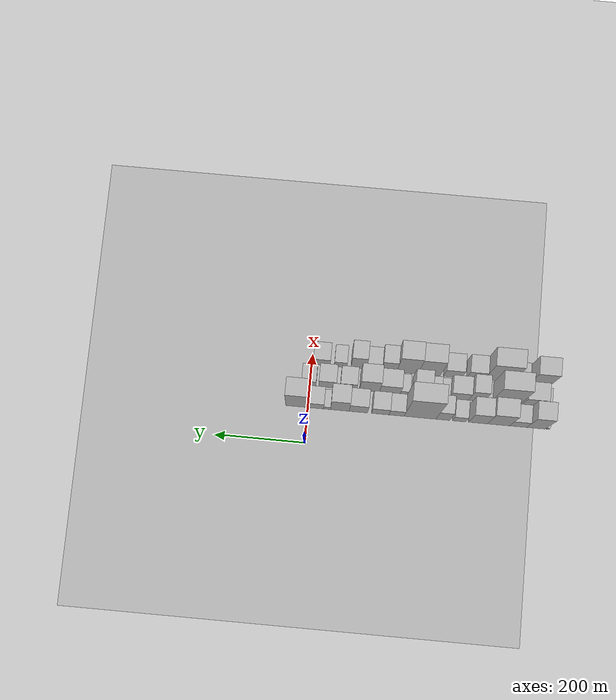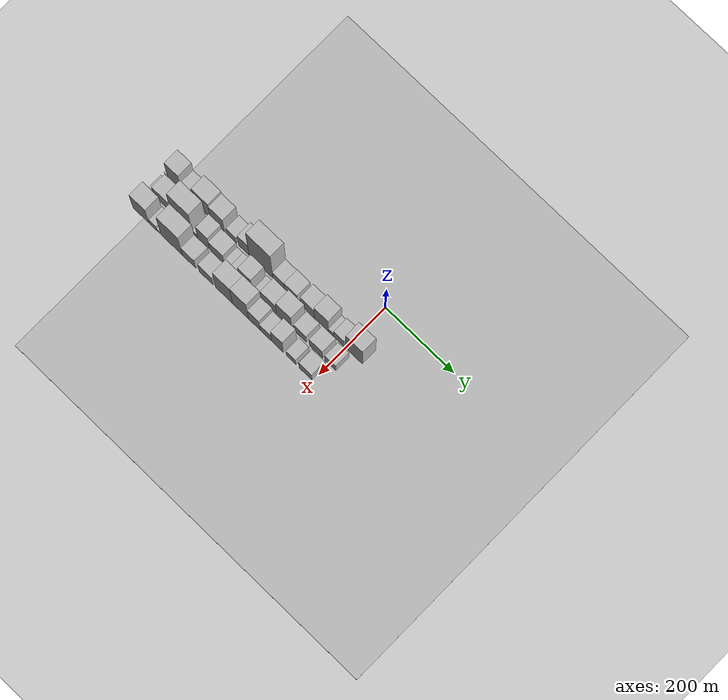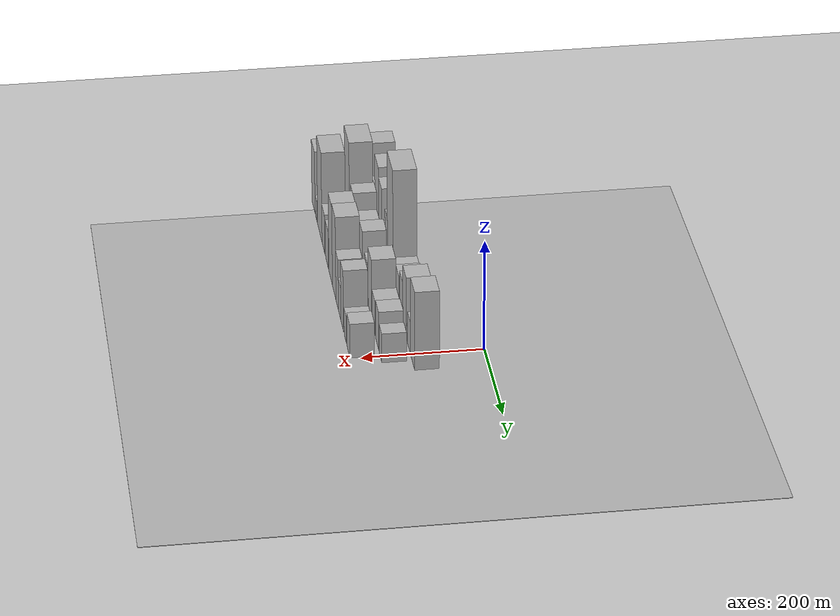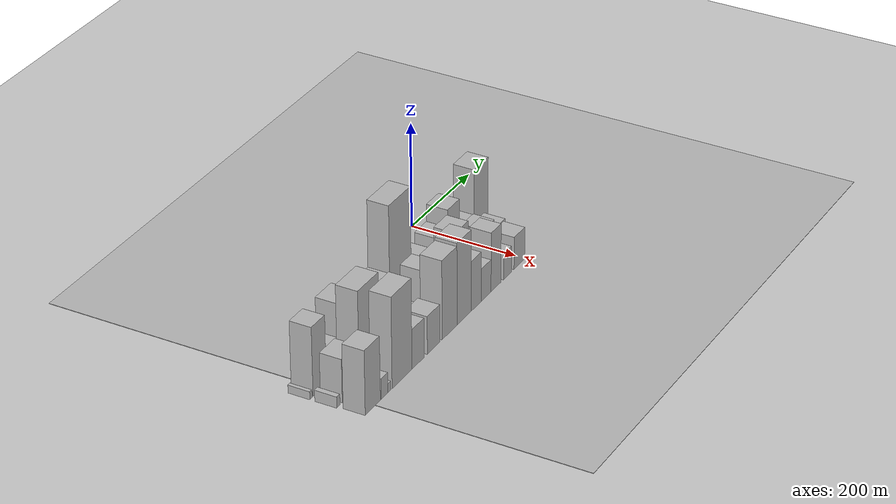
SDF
<sdf version="1.6">
 <world name="default">
  <include><name>ground_plane_1</name><uri>model://HANNAS_ground_plane</uri></include>
  <include>
   <name>ground_plane_2</name>
   <uri>model://HANNAS_ground_plane</uri>
   <pose>100 0 0  0 0 0</pose>
  </include>
  <model name="building_1">
   <static>1</static>
   <pose>100.0000 -532.6569 0 0.000000 0.000000 0.000000</pose>
   <link name="link">
    <pose>0 0 7.50 0 0 0</pose>
    <collision name="collision"><geometry><box><size>40.0000 6.6862 15.0000</size></box></geometry></collision>
    <visual name="visual">
     <cast_shadows>0</cast_shadows>
     <geometry><box><size>40.0000 6.6862 15.0000</size></box></geometry>
     <material>
      <script>
       <uri>model://HANNAS_wall/materials/scripts</uri>
       <uri>model://HANNAS_wall/materials/textures</uri>
       <name>vrc/HANNAS_wall</name>
      </script>
     </material>
    </visual>
   </link>
  </model>
  <model name="building_2">
   <static>1</static>
   <pose>100.0000 -505.9349 0 0.000000 0.000000 0.000000</pose>
   <link name="link">
    <pose>0 0 64.50 0 0 0</pose>
    <collision name="collision"><geometry><box><size>40.0000 40.7578 129.0000</size></box></geometry></collision>
    <visual name="visual">
     <cast_shadows>0</cast_shadows>
     <geometry><box><size>40.0000 40.7578 129.0000</size></box></geometry>
     <material>
      <script>
       <uri>model://HANNAS_wall/materials/scripts</uri>
       <uri>model://HANNAS_wall/materials/textures</uri>
       <name>vrc/HANNAS_wall</name>
      </script>
     </material>
    </visual>
   </link>
  </model>
  <model name="building_3">
   <static>1</static>
   <pose>100.0000 -466.7284 0 0.000000 0.000000 0.000000</pose>
   <link name="link">
    <pose>0 0 33.00 0 0 0</pose>
    <collision name="collision"><geometry><box><size>40.0000 37.6552 66.0000</size></box></geometry></collision>
    <visual name="visual">
     <cast_shadows>0</cast_shadows>
     <geometry><box><size>40.0000 37.6552 66.0000</size></box></geometry>
     <material>
      <script>
       <uri>model://HANNAS_wall/materials/scripts</uri>
       <uri>model://HANNAS_wall/materials/textures</uri>
       <name>vrc/HANNAS_wall</name>
      </script>
     </material>
    </visual>
   </link>
  </model>
  <model name="building_4">
   <static>1</static>
   <pose>100.0000 -423.2139 0 0.000000 0.000000 0.000000</pose>
   <link name="link">
    <pose>0 0 64.50 0 0 0</pose>
    <collision name="collision"><geometry><box><size>40.0000 49.3737 129.0000</size></box></geometry></collision>
    <visual name="visual">
     <cast_shadows>0</cast_shadows>
     <geometry><box><size>40.0000 49.3737 129.0000</size></box></geometry>
     <material>
      <script>
       <uri>model://HANNAS_wall/materials/scripts</uri>
       <uri>model://HANNAS_wall/materials/textures</uri>
       <name>vrc/HANNAS_wall</name>
      </script>
     </material>
    </visual>
   </link>
  </model>
  <model name="building_5">
   <static>1</static>
   <pose>100.0000 -377.5624 0 0.000000 0.000000 0.000000</pose>
   <link name="link">
    <pose>0 0 55.50 0 0 0</pose>
    <collision name="collision"><geometry><box><size>40.0000 41.9293 111.0000</size></box></geometry></collision>
    <visual name="visual">
     <cast_shadows>0</cast_shadows>
     <geometry><box><size>40.0000 41.9293 111.0000</size></box></geometry>
     <material>
      <script>
       <uri>model://HANNAS_wall/materials/scripts</uri>
       <uri>model://HANNAS_wall/materials/textures</uri>
       <name>vrc/HANNAS_wall</name>
      </script>
     </material>
    </visual>
   </link>
  </model>
  <model name="building_6">
   <static>1</static>
   <pose>100.0000 -335.8281 0 0.000000 0.000000 0.000000</pose>
   <link name="link">
    <pose>0 0 27.00 0 0 0</pose>
    <collision name="collision"><geometry><box><size>40.0000 29.5394 54.0000</size></box></geometry></collision>
    <visual name="visual">
     <cast_shadows>0</cast_shadows>
     <geometry><box><size>40.0000 29.5394 54.0000</size></box></geometry>
     <material>
      <script>
       <uri>model://HANNAS_wall/materials/scripts</uri>
       <uri>model://HANNAS_wall/materials/textures</uri>
       <name>vrc/HANNAS_wall</name>
      </script>
     </material>
    </visual>
   </link>
  </model>
  <model name="building_7">
   <static>1</static>
   <pose>100.0000 -299.5484 0 0.000000 0.000000 0.000000</pose>
   <link name="link">
    <pose>0 0 48.00 0 0 0</pose>
    <collision name="collision"><geometry><box><size>40.0000 31.0200 96.0000</size></box></geometry></collision>
    <visual name="visual">
     <cast_shadows>0</cast_shadows>
     <geometry><box><size>40.0000 31.0200 96.0000</size></box></geometry>
     <material>
      <script>
       <uri>model://HANNAS_wall/materials/scripts</uri>
       <uri>model://HANNAS_wall/materials/textures</uri>
       <name>vrc/HANNAS_wall</name>
      </script>
     </material>
    </visual>
   </link>
  </model>
  <model name="building_8">
   <static>1</static>
   <pose>100.0000 -248.7638 0 0.000000 0.000000 0.000000</pose>
   <link name="link">
    <pose>0 0 111.00 0 0 0</pose>
    <collision name="collision"><geometry><box><size>40.0000 70.5492 222.0000</size></box></geometry></collision>
    <visual name="visual">
     <cast_shadows>0</cast_shadows>
     <geometry><box><size>40.0000 70.5492 222.0000</size></box></geometry>
     <material>
      <script>
       <uri>model://HANNAS_wall/materials/scripts</uri>
       <uri>model://HANNAS_wall/materials/textures</uri>
       <name>vrc/HANNAS_wall</name>
      </script>
     </material>
    </visual>
   </link>
  </model>
  <model name="building_9">
   <static>1</static>
   <pose>100.0000 -196.5476 0 0.000000 0.000000 0.000000</pose>
   <link name="link">
    <pose>0 0 30.00 0 0 0</pose>
    <collision name="collision"><geometry><box><size>40.0000 33.8831 60.0000</size></box></geometry></collision>
    <visual name="visual">
     <cast_shadows>0</cast_shadows>
     <geometry><box><size>40.0000 33.8831 60.0000</size></box></geometry>
     <material>
      <script>
       <uri>model://HANNAS_wall/materials/scripts</uri>
       <uri>model://HANNAS_wall/materials/textures</uri>
       <name>vrc/HANNAS_wall</name>
      </script>
     </material>
    </visual>
   </link>
  </model>
  <model name="building_10">
   <static>1</static>
   <pose>100.0000 -160.3674 0 0.000000 0.000000 0.000000</pose>
   <link name="link">
    <pose>0 0 33.00 0 0 0</pose>
    <collision name="collision"><geometry><box><size>40.0000 38.4773 66.0000</size></box></geometry></collision>
    <visual name="visual">
     <cast_shadows>0</cast_shadows>
     <geometry><box><size>40.0000 38.4773 66.0000</size></box></geometry>
     <material>
      <script>
       <uri>model://HANNAS_wall/materials/scripts</uri>
       <uri>model://HANNAS_wall/materials/textures</uri>
       <name>vrc/HANNAS_wall</name>
      </script>
     </material>
    </visual>
   </link>
  </model>
  <model name="building_11">
   <static>1</static>
   <pose>100.0000 -111.7872 0 0.000000 0.000000 0.000000</pose>
   <link name="link">
    <pose>0 0 40.50 0 0 0</pose>
    <collision name="collision"><geometry><box><size>40.0000 40.6831 81.0000</size></box></geometry></collision>
    <visual name="visual">
     <cast_shadows>0</cast_shadows>
     <geometry><box><size>40.0000 40.6831 81.0000</size></box></geometry>
     <material>
      <script>
       <uri>model://HANNAS_wall/materials/scripts</uri>
       <uri>model://HANNAS_wall/materials/textures</uri>
       <name>vrc/HANNAS_wall</name>
      </script>
     </material>
    </visual>
   </link>
  </model>
  <model name="building_12">
   <static>1</static>
   <pose>100.0000 -70.7702 0 0.000000 0.000000 0.000000</pose>
   <link name="link">
    <pose>0 0 57.00 0 0 0</pose>
    <collision name="collision"><geometry><box><size>40.0000 41.3510 114.0000</size></box></geometry></collision>
    <visual name="visual">
     <cast_shadows>0</cast_shadows>
     <geometry><box><size>40.0000 41.3510 114.0000</size></box></geometry>
     <material>
      <script>
       <uri>model://HANNAS_wall/materials/scripts</uri>
       <uri>model://HANNAS_wall/materials/textures</uri>
       <name>vrc/HANNAS_wall</name>
      </script>
     </material>
    </visual>
   </link>
  </model>
  <model name="building_13">
   <static>1</static>
   <pose>100.0000 -42.5535 0 0.000000 0.000000 0.000000</pose>
   <link name="link">
    <pose>0 0 15.00 0 0 0</pose>
    <collision name="collision"><geometry><box><size>40.0000 15.0822 30.0000</size></box></geometry></collision>
    <visual name="visual">
     <cast_shadows>0</cast_shadows>
     <geometry><box><size>40.0000 15.0822 30.0000</size></box></geometry>
     <material>
      <script>
       <uri>model://HANNAS_wall/materials/scripts</uri>
       <uri>model://HANNAS_wall/materials/textures</uri>
       <name>vrc/HANNAS_wall</name>
      </script>
     </material>
    </visual>
   </link>
  </model>
  <model name="building_14">
   <static>1</static>
   <pose>100.0000 -19.4573 0 0.000000 0.000000 0.000000</pose>
   <link name="link">
    <pose>0 0 30.00 0 0 0</pose>
    <collision name="collision"><geometry><box><size>40.0000 31.1103 60.0000</size></box></geometry></collision>
    <visual name="visual">
     <cast_shadows>0</cast_shadows>
     <geometry><box><size>40.0000 31.1103 60.0000</size></box></geometry>
     <material>
      <script>
       <uri>model://HANNAS_wall/materials/scripts</uri>
       <uri>model://HANNAS_wall/materials/textures</uri>
       <name>vrc/HANNAS_wall</name>
      </script>
     </material>
    </visual>
   </link>
  </model>
  <model name="building_15">
   <static>1</static>
   <pose>100.0000 24.7124 0 0.000000 0.000000 0.000000</pose>
   <link name="link">
    <pose>0 0 72.00 0 0 0</pose>
    <collision name="collision"><geometry><box><size>40.0000 49.2291 144.0000</size></box></geometry></collision>
    <visual name="visual">
     <cast_shadows>0</cast_shadows>
     <geometry><box><size>40.0000 49.2291 144.0000</size></box></geometry>
     <material>
      <script>
       <uri>model://HANNAS_wall/materials/scripts</uri>
       <uri>model://HANNAS_wall/materials/textures</uri>
       <name>vrc/HANNAS_wall</name>
      </script>
     </material>
    </visual>
   </link>
  </model>
  <model name="building_32">
   <static>1</static>
   <pose>149.0000 -531.0067 0 0.000000 0.000000 0.000000</pose>
   <link name="link">
    <pose>0 0 10.50 0 0 0</pose>
    <collision name="collision"><geometry><box><size>40.0000 9.9865 21.0000</size></box></geometry></collision>
    <visual name="visual">
     <cast_shadows>0</cast_shadows>
     <geometry><box><size>40.0000 9.9865 21.0000</size></box></geometry>
     <material>
      <script>
       <uri>model://HANNAS_wall/materials/scripts</uri>
       <uri>model://HANNAS_wall/materials/textures</uri>
       <name>vrc/HANNAS_wall</name>
      </script>
     </material>
    </visual>
   </link>
  </model>
  <model name="building_33">
   <static>1</static>
   <pose>149.0000 -495.3012 0 0.000000 0.000000 0.000000</pose>
   <link name="link">
    <pose>0 0 40.50 0 0 0</pose>
    <collision name="collision"><geometry><box><size>40.0000 47.4246 81.0000</size></box></geometry></collision>
    <visual name="visual">
     <cast_shadows>0</cast_shadows>
     <geometry><box><size>40.0000 47.4246 81.0000</size></box></geometry>
     <material>
      <script>
       <uri>model://HANNAS_wall/materials/scripts</uri>
       <uri>model://HANNAS_wall/materials/textures</uri>
       <name>vrc/HANNAS_wall</name>
      </script>
     </material>
    </visual>
   </link>
  </model>
  <model name="building_34">
   <static>1</static>
   <pose>149.0000 -434.6481 0 0.000000 0.000000 0.000000</pose>
   <link name="link">
    <pose>0 0 88.50 0 0 0</pose>
    <collision name="collision"><geometry><box><size>40.0000 63.8814 177.0000</size></box></geometry></collision>
    <visual name="visual">
     <cast_shadows>0</cast_shadows>
     <geometry><box><size>40.0000 63.8814 177.0000</size></box></geometry>
     <material>
      <script>
       <uri>model://HANNAS_wall/materials/scripts</uri>
       <uri>model://HANNAS_wall/materials/textures</uri>
       <name>vrc/HANNAS_wall</name>
      </script>
     </material>
    </visual>
   </link>
  </model>
  <model name="building_35">
   <static>1</static>
   <pose>149.0000 -395.0903 0 0.000000 0.000000 0.000000</pose>
   <link name="link">
    <pose>0 0 15.00 0 0 0</pose>
    <collision name="collision"><geometry><box><size>40.0000 15.2344 30.0000</size></box></geometry></collision>
    <visual name="visual">
     <cast_shadows>0</cast_shadows>
     <geometry><box><size>40.0000 15.2344 30.0000</size></box></geometry>
     <material>
      <script>
       <uri>model://HANNAS_wall/materials/scripts</uri>
       <uri>model://HANNAS_wall/materials/textures</uri>
       <name>vrc/HANNAS_wall</name>
      </script>
     </material>
    </visual>
   </link>
  </model>
  <model name="building_36">
   <static>1</static>
   <pose>149.0000 -370.2064 0 0.000000 0.000000 0.000000</pose>
   <link name="link">
    <pose>0 0 54.00 0 0 0</pose>
    <collision name="collision"><geometry><box><size>40.0000 34.5334 108.0000</size></box></geometry></collision>
    <visual name="visual">
     <cast_shadows>0</cast_shadows>
     <geometry><box><size>40.0000 34.5334 108.0000</size></box></geometry>
     <material>
      <script>
       <uri>model://HANNAS_wall/materials/scripts</uri>
       <uri>model://HANNAS_wall/materials/textures</uri>
       <name>vrc/HANNAS_wall</name>
      </script>
     </material>
    </visual>
   </link>
  </model>
  <model name="building_37">
   <static>1</static>
   <pose>149.0000 -331.3263 0 0.000000 0.000000 0.000000</pose>
   <link name="link">
    <pose>0 0 37.50 0 0 0</pose>
    <collision name="collision"><geometry><box><size>40.0000 43.2267 75.0000</size></box></geometry></collision>
    <visual name="visual">
     <cast_shadows>0</cast_shadows>
     <geometry><box><size>40.0000 43.2267 75.0000</size></box></geometry>
     <material>
      <script>
       <uri>model://HANNAS_wall/materials/scripts</uri>
       <uri>model://HANNAS_wall/materials/textures</uri>
       <name>vrc/HANNAS_wall</name>
      </script>
     </material>
    </visual>
   </link>
  </model>
  <model name="building_38">
   <static>1</static>
   <pose>149.0000 -299.9384 0 0.000000 0.000000 0.000000</pose>
   <link name="link">
    <pose>0 0 16.50 0 0 0</pose>
    <collision name="collision"><geometry><box><size>40.0000 19.5491 33.0000</size></box></geometry></collision>
    <visual name="visual">
     <cast_shadows>0</cast_shadows>
     <geometry><box><size>40.0000 19.5491 33.0000</size></box></geometry>
     <material>
      <script>
       <uri>model://HANNAS_wall/materials/scripts</uri>
       <uri>model://HANNAS_wall/materials/textures</uri>
       <name>vrc/HANNAS_wall</name>
      </script>
     </material>
    </visual>
   </link>
  </model>
  <model name="building_39">
   <static>1</static>
   <pose>149.0000 -277.6687 0 0.000000 0.000000 0.000000</pose>
   <link name="link">
    <pose>0 0 21.00 0 0 0</pose>
    <collision name="collision"><geometry><box><size>40.0000 24.9903 42.0000</size></box></geometry></collision>
    <visual name="visual">
     <cast_shadows>0</cast_shadows>
     <geometry><box><size>40.0000 24.9903 42.0000</size></box></geometry>
     <material>
      <script>
       <uri>model://HANNAS_wall/materials/scripts</uri>
       <uri>model://HANNAS_wall/materials/textures</uri>
       <name>vrc/HANNAS_wall</name>
      </script>
     </material>
    </visual>
   </link>
  </model>
  <model name="building_40">
   <static>1</static>
   <pose>149.0000 -245.9102 0 0.000000 0.000000 0.000000</pose>
   <link name="link">
    <pose>0 0 52.50 0 0 0</pose>
    <collision name="collision"><geometry><box><size>40.0000 38.5267 105.0000</size></box></geometry></collision>
    <visual name="visual">
     <cast_shadows>0</cast_shadows>
     <geometry><box><size>40.0000 38.5267 105.0000</size></box></geometry>
     <material>
      <script>
       <uri>model://HANNAS_wall/materials/scripts</uri>
       <uri>model://HANNAS_wall/materials/textures</uri>
       <name>vrc/HANNAS_wall</name>
      </script>
     </material>
    </visual>
   </link>
  </model>
  <model name="building_41">
   <static>1</static>
   <pose>149.0000 -211.1616 0 0.000000 0.000000 0.000000</pose>
   <link name="link">
    <pose>0 0 18.00 0 0 0</pose>
    <collision name="collision"><geometry><box><size>40.0000 20.9706 36.0000</size></box></geometry></collision>
    <visual name="visual">
     <cast_shadows>0</cast_shadows>
     <geometry><box><size>40.0000 20.9706 36.0000</size></box></geometry>
     <material>
      <script>
       <uri>model://HANNAS_wall/materials/scripts</uri>
       <uri>model://HANNAS_wall/materials/textures</uri>
       <name>vrc/HANNAS_wall</name>
      </script>
     </material>
    </visual>
   </link>
  </model>
  <model name="building_42">
   <static>1</static>
   <pose>149.0000 -177.5878 0 0.000000 0.000000 0.000000</pose>
   <link name="link">
    <pose>0 0 40.50 0 0 0</pose>
    <collision name="collision"><geometry><box><size>40.0000 46.1771 81.0000</size></box></geometry></collision>
    <visual name="visual">
     <cast_shadows>0</cast_shadows>
     <geometry><box><size>40.0000 46.1771 81.0000</size></box></geometry>
     <material>
      <script>
       <uri>model://HANNAS_wall/materials/scripts</uri>
       <uri>model://HANNAS_wall/materials/textures</uri>
       <name>vrc/HANNAS_wall</name>
      </script>
     </material>
    </visual>
   </link>
  </model>
  <model name="building_43">
   <static>1</static>
   <pose>149.0000 -132.2353 0 0.000000 0.000000 0.000000</pose>
   <link name="link">
    <pose>0 0 58.50 0 0 0</pose>
    <collision name="collision"><geometry><box><size>40.0000 44.5278 117.0000</size></box></geometry></collision>
    <visual name="visual">
     <cast_shadows>0</cast_shadows>
     <geometry><box><size>40.0000 44.5278 117.0000</size></box></geometry>
     <material>
      <script>
       <uri>model://HANNAS_wall/materials/scripts</uri>
       <uri>model://HANNAS_wall/materials/textures</uri>
       <name>vrc/HANNAS_wall</name>
      </script>
     </material>
    </visual>
   </link>
  </model>
  <model name="building_44">
   <static>1</static>
   <pose>149.0000 -85.3971 0 0.000000 0.000000 0.000000</pose>
   <link name="link">
    <pose>0 0 33.00 0 0 0</pose>
    <collision name="collision"><geometry><box><size>40.0000 37.1487 66.0000</size></box></geometry></collision>
    <visual name="visual">
     <cast_shadows>0</cast_shadows>
     <geometry><box><size>40.0000 37.1487 66.0000</size></box></geometry>
     <material>
      <script>
       <uri>model://HANNAS_wall/materials/scripts</uri>
       <uri>model://HANNAS_wall/materials/textures</uri>
       <name>vrc/HANNAS_wall</name>
      </script>
     </material>
    </visual>
   </link>
  </model>
  <model name="building_45">
   <static>1</static>
   <pose>149.0000 -38.5079 0 0.000000 0.000000 0.000000</pose>
   <link name="link">
    <pose>0 0 36.00 0 0 0</pose>
    <collision name="collision"><geometry><box><size>40.0000 38.6296 72.0000</size></box></geometry></collision>
    <visual name="visual">
     <cast_shadows>0</cast_shadows>
     <geometry><box><size>40.0000 38.6296 72.0000</size></box></geometry>
     <material>
      <script>
       <uri>model://HANNAS_wall/materials/scripts</uri>
       <uri>model://HANNAS_wall/materials/textures</uri>
       <name>vrc/HANNAS_wall</name>
      </script>
     </material>
    </visual>
   </link>
  </model>
  <model name="building_46">
   <static>1</static>
   <pose>149.0000 2.9643 0 0.000000 0.000000 0.000000</pose>
   <link name="link">
    <pose>0 0 27.00 0 0 0</pose>
    <collision name="collision"><geometry><box><size>40.0000 32.3148 54.0000</size></box></geometry></collision>
    <visual name="visual">
     <cast_shadows>0</cast_shadows>
     <geometry><box><size>40.0000 32.3148 54.0000</size></box></geometry>
     <material>
      <script>
       <uri>model://HANNAS_wall/materials/scripts</uri>
       <uri>model://HANNAS_wall/materials/textures</uri>
       <name>vrc/HANNAS_wall</name>
      </script>
     </material>
    </visual>
   </link>
  </model>
  <model name="building_60">
   <static>1</static>
   <pose>198.0000 -508.4930 0 0.000000 0.000000 0.000000</pose>
   <link name="link">
    <pose>0 0 60.00 0 0 0</pose>
    <collision name="collision"><geometry><box><size>40.0000 47.0139 120.0000</size></box></geometry></collision>
    <visual name="visual">
     <cast_shadows>0</cast_shadows>
     <geometry><box><size>40.0000 47.0139 120.0000</size></box></geometry>
     <material>
      <script>
       <uri>model://HANNAS_wall/materials/scripts</uri>
       <uri>model://HANNAS_wall/materials/textures</uri>
       <name>vrc/HANNAS_wall</name>
      </script>
     </material>
    </visual>
   </link>
  </model>
  <model name="building_61">
   <static>1</static>
   <pose>198.0000 -471.4703 0 0.000000 0.000000 0.000000</pose>
   <link name="link">
    <pose>0 0 19.50 0 0 0</pose>
    <collision name="collision"><geometry><box><size>40.0000 21.0315 39.0000</size></box></geometry></collision>
    <visual name="visual">
     <cast_shadows>0</cast_shadows>
     <geometry><box><size>40.0000 21.0315 39.0000</size></box></geometry>
     <material>
      <script>
       <uri>model://HANNAS_wall/materials/scripts</uri>
       <uri>model://HANNAS_wall/materials/textures</uri>
       <name>vrc/HANNAS_wall</name>
      </script>
     </material>
    </visual>
   </link>
  </model>
  <model name="building_62">
   <static>1</static>
   <pose>198.0000 -456.5222 0 0.000000 0.000000 0.000000</pose>
   <link name="link">
    <pose>0 0 9.00 0 0 0</pose>
    <collision name="collision"><geometry><box><size>40.0000 8.8648 18.0000</size></box></geometry></collision>
    <visual name="visual">
     <cast_shadows>0</cast_shadows>
     <geometry><box><size>40.0000 8.8648 18.0000</size></box></geometry>
     <material>
      <script>
       <uri>model://HANNAS_wall/materials/scripts</uri>
       <uri>model://HANNAS_wall/materials/textures</uri>
       <name>vrc/HANNAS_wall</name>
      </script>
     </material>
    </visual>
   </link>
  </model>
  <model name="building_63">
   <static>1</static>
   <pose>198.0000 -416.4171 0 0.000000 0.000000 0.000000</pose>
   <link name="link">
    <pose>0 0 85.50 0 0 0</pose>
    <collision name="collision"><geometry><box><size>40.0000 63.3454 171.0000</size></box></geometry></collision>
    <visual name="visual">
     <cast_shadows>0</cast_shadows>
     <geometry><box><size>40.0000 63.3454 171.0000</size></box></geometry>
     <material>
      <script>
       <uri>model://HANNAS_wall/materials/scripts</uri>
       <uri>model://HANNAS_wall/materials/textures</uri>
       <name>vrc/HANNAS_wall</name>
      </script>
     </material>
    </visual>
   </link>
  </model>
  <model name="building_64">
   <static>1</static>
   <pose>198.0000 -364.8468 0 0.000000 0.000000 0.000000</pose>
   <link name="link">
    <pose>0 0 37.50 0 0 0</pose>
    <collision name="collision"><geometry><box><size>40.0000 39.7953 75.0000</size></box></geometry></collision>
    <visual name="visual">
     <cast_shadows>0</cast_shadows>
     <geometry><box><size>40.0000 39.7953 75.0000</size></box></geometry>
     <material>
      <script>
       <uri>model://HANNAS_wall/materials/scripts</uri>
       <uri>model://HANNAS_wall/materials/textures</uri>
       <name>vrc/HANNAS_wall</name>
      </script>
     </material>
    </visual>
   </link>
  </model>
  <model name="building_65">
   <static>1</static>
   <pose>198.0000 -314.2972 0 0.000000 0.000000 0.000000</pose>
   <link name="link">
    <pose>0 0 36.00 0 0 0</pose>
    <collision name="collision"><geometry><box><size>40.0000 41.3038 72.0000</size></box></geometry></collision>
    <visual name="visual">
     <cast_shadows>0</cast_shadows>
     <geometry><box><size>40.0000 41.3038 72.0000</size></box></geometry>
     <material>
      <script>
       <uri>model://HANNAS_wall/materials/scripts</uri>
       <uri>model://HANNAS_wall/materials/textures</uri>
       <name>vrc/HANNAS_wall</name>
      </script>
     </material>
    </visual>
   </link>
  </model>
  <model name="building_66">
   <static>1</static>
   <pose>198.0000 -261.7355 0 0.000000 0.000000 0.000000</pose>
   <link name="link">
    <pose>0 0 75.00 0 0 0</pose>
    <collision name="collision"><geometry><box><size>40.0000 49.8196 150.0000</size></box></geometry></collision>
    <visual name="visual">
     <cast_shadows>0</cast_shadows>
     <geometry><box><size>40.0000 49.8196 150.0000</size></box></geometry>
     <material>
      <script>
       <uri>model://HANNAS_wall/materials/scripts</uri>
       <uri>model://HANNAS_wall/materials/textures</uri>
       <name>vrc/HANNAS_wall</name>
      </script>
     </material>
    </visual>
   </link>
  </model>
  <model name="building_67">
   <static>1</static>
   <pose>198.0000 -212.7564 0 0.000000 0.000000 0.000000</pose>
   <link name="link">
    <pose>0 0 78.00 0 0 0</pose>
    <collision name="collision"><geometry><box><size>40.0000 48.1387 156.0000</size></box></geometry></collision>
    <visual name="visual">
     <cast_shadows>0</cast_shadows>
     <geometry><box><size>40.0000 48.1387 156.0000</size></box></geometry>
     <material>
      <script>
       <uri>model://HANNAS_wall/materials/scripts</uri>
       <uri>model://HANNAS_wall/materials/textures</uri>
       <name>vrc/HANNAS_wall</name>
      </script>
     </material>
    </visual>
   </link>
  </model>
  <model name="building_68">
   <static>1</static>
   <pose>198.0000 -171.7990 0 0.000000 0.000000 0.000000</pose>
   <link name="link">
    <pose>0 0 48.00 0 0 0</pose>
    <collision name="collision"><geometry><box><size>40.0000 33.7761 96.0000</size></box></geometry></collision>
    <visual name="visual">
     <cast_shadows>0</cast_shadows>
     <geometry><box><size>40.0000 33.7761 96.0000</size></box></geometry>
     <material>
      <script>
       <uri>model://HANNAS_wall/materials/scripts</uri>
       <uri>model://HANNAS_wall/materials/textures</uri>
       <name>vrc/HANNAS_wall</name>
      </script>
     </material>
    </visual>
   </link>
  </model>
  <model name="building_69">
   <static>1</static>
   <pose>198.0000 -137.9906 0 0.000000 0.000000 0.000000</pose>
   <link name="link">
    <pose>0 0 31.50 0 0 0</pose>
    <collision name="collision"><geometry><box><size>40.0000 33.8408 63.0000</size></box></geometry></collision>
    <visual name="visual">
     <cast_shadows>0</cast_shadows>
     <geometry><box><size>40.0000 33.8408 63.0000</size></box></geometry>
     <material>
      <script>
       <uri>model://HANNAS_wall/materials/scripts</uri>
       <uri>model://HANNAS_wall/materials/textures</uri>
       <name>vrc/HANNAS_wall</name>
      </script>
     </material>
    </visual>
   </link>
  </model>
  <model name="building_70">
   <static>1</static>
   <pose>198.0000 -103.8891 0 0.000000 0.000000 0.000000</pose>
   <link name="link">
    <pose>0 0 57.00 0 0 0</pose>
    <collision name="collision"><geometry><box><size>40.0000 34.3621 114.0000</size></box></geometry></collision>
    <visual name="visual">
     <cast_shadows>0</cast_shadows>
     <geometry><box><size>40.0000 34.3621 114.0000</size></box></geometry>
     <material>
      <script>
       <uri>model://HANNAS_wall/materials/scripts</uri>
       <uri>model://HANNAS_wall/materials/textures</uri>
       <name>vrc/HANNAS_wall</name>
      </script>
     </material>
    </visual>
   </link>
  </model>
  <model name="building_71">
   <static>1</static>
   <pose>198.0000 -63.6289 0 0.000000 0.000000 0.000000</pose>
   <link name="link">
    <pose>0 0 25.50 0 0 0</pose>
    <collision name="collision"><geometry><box><size>40.0000 28.1582 51.0000</size></box></geometry></collision>
    <visual name="visual">
     <cast_shadows>0</cast_shadows>
     <geometry><box><size>40.0000 28.1582 51.0000</size></box></geometry>
     <material>
      <script>
       <uri>model://HANNAS_wall/materials/scripts</uri>
       <uri>model://HANNAS_wall/materials/textures</uri>
       <name>vrc/HANNAS_wall</name>
      </script>
     </material>
    </visual>
   </link>
  </model>
  <model name="building_72">
   <static>1</static>
   <pose>198.0000 -21.6687 0 0.000000 0.000000 0.000000</pose>
   <link name="link">
    <pose>0 0 31.50 0 0 0</pose>
    <collision name="collision"><geometry><box><size>40.0000 37.7622 63.0000</size></box></geometry></collision>
    <visual name="visual">
     <cast_shadows>0</cast_shadows>
     <geometry><box><size>40.0000 37.7622 63.0000</size></box></geometry>
     <material>
      <script>
       <uri>model://HANNAS_wall/materials/scripts</uri>
       <uri>model://HANNAS_wall/materials/textures</uri>
       <name>vrc/HANNAS_wall</name>
      </script>
     </material>
    </visual>
   </link>
  </model>
 </world>
</sdf>
